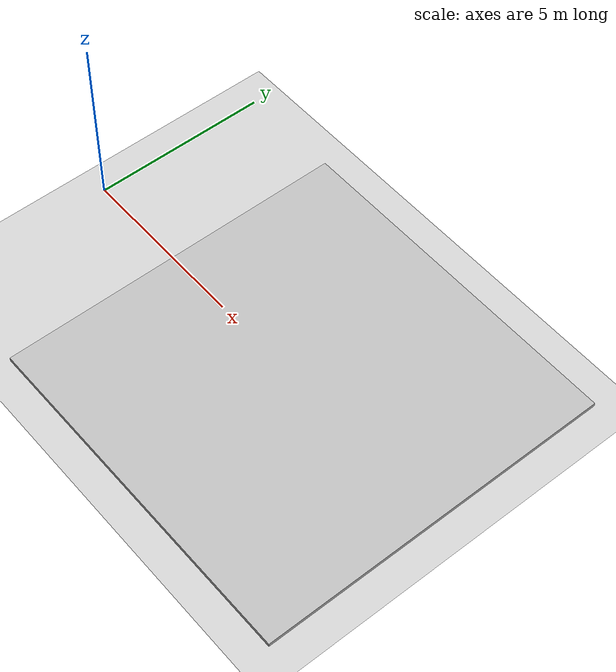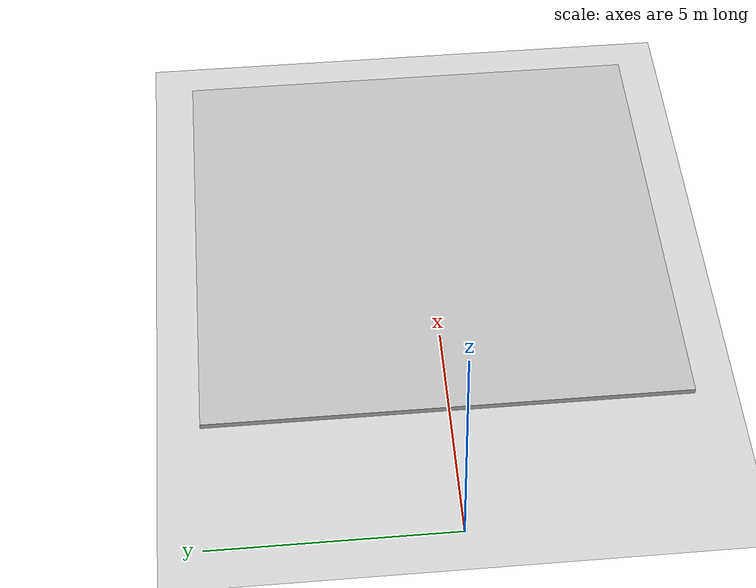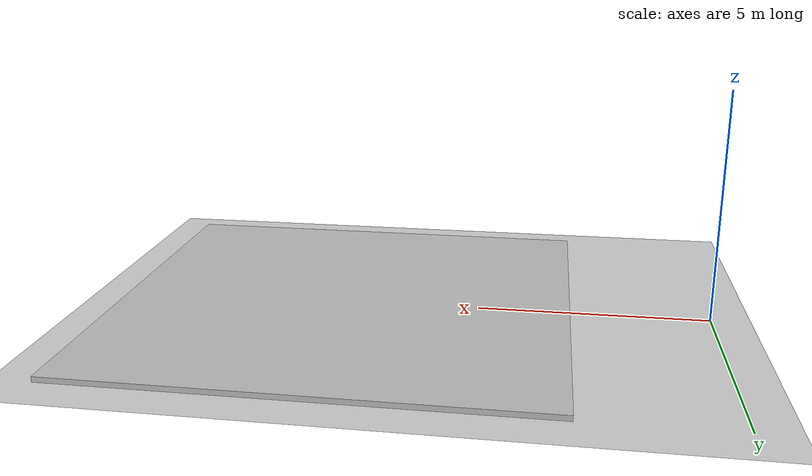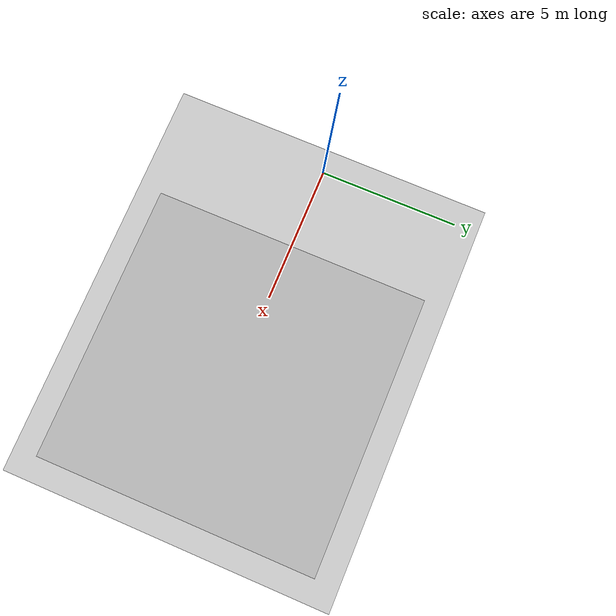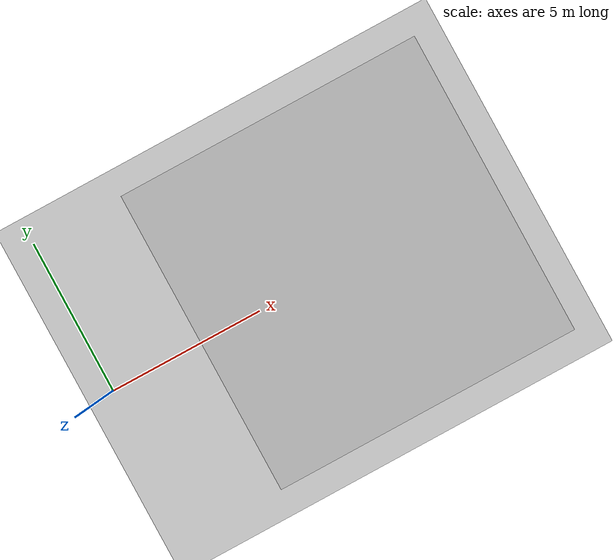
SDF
<?xml version="1.0" ?>
<sdf version='1.6'>
  <world name='default'>
    <include>
      <uri>model://ground_plane</uri>
    </include>
    <include>
      <uri>model://sun</uri>
    </include>

    <model name="collision_box">
      <static>true</static>
      <pose>8 0 0 0 0 0</pose>
      <link name="link">
        <collision name="collision">
          <geometry>
            <box>
              <size>10 10 0.2</size>
            </box>
          </geometry>
        </collision>
        <visual name="visual">
          <geometry>
            <box>
              <size>10 10 0.2</size>
            </box>
          </geometry>
        </visual>
      </link>
    </model>
  </world>
</sdf>
